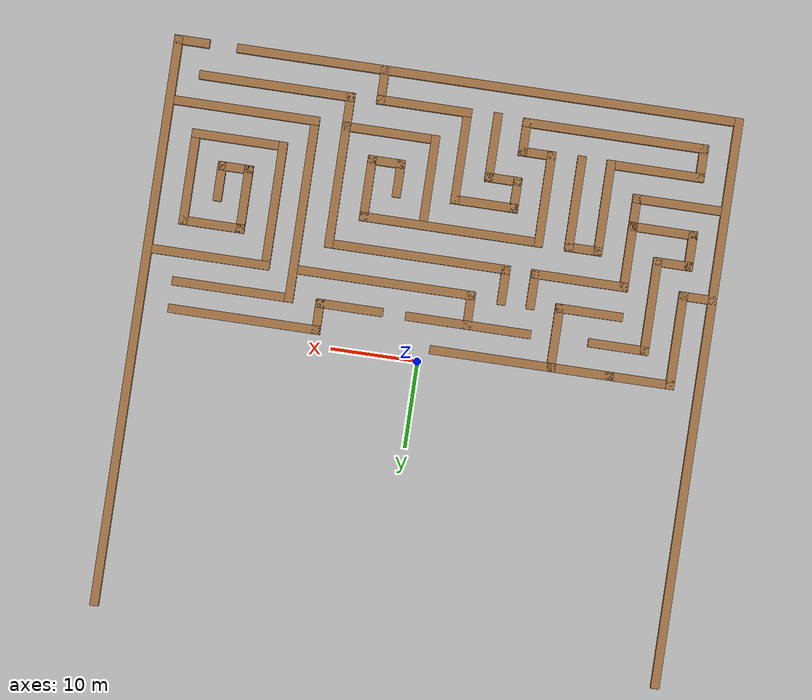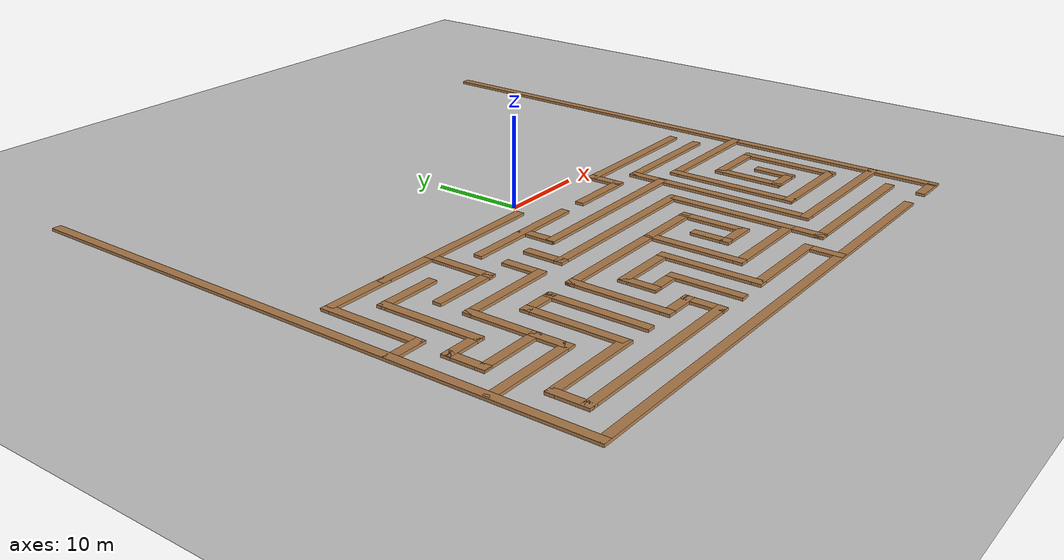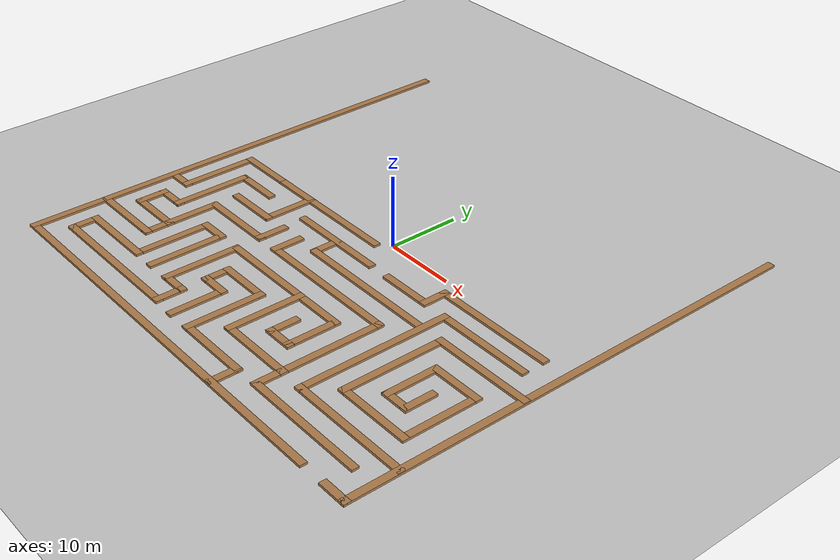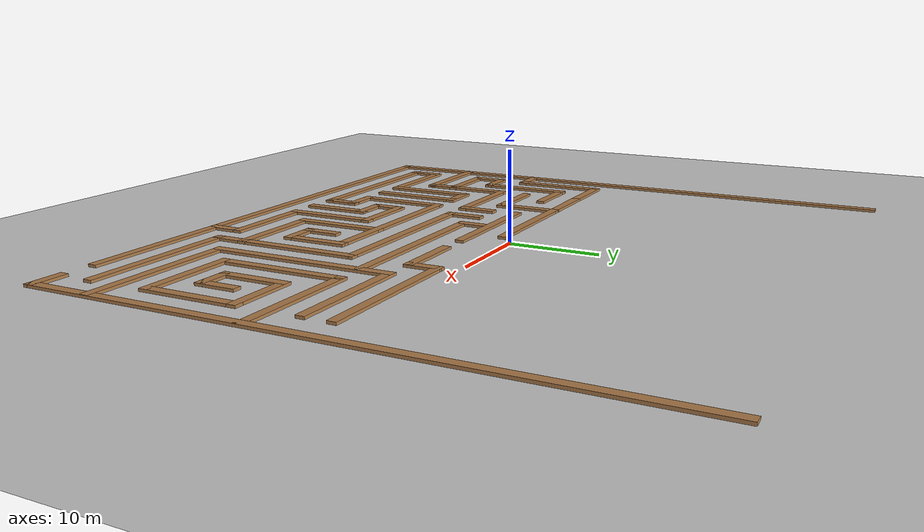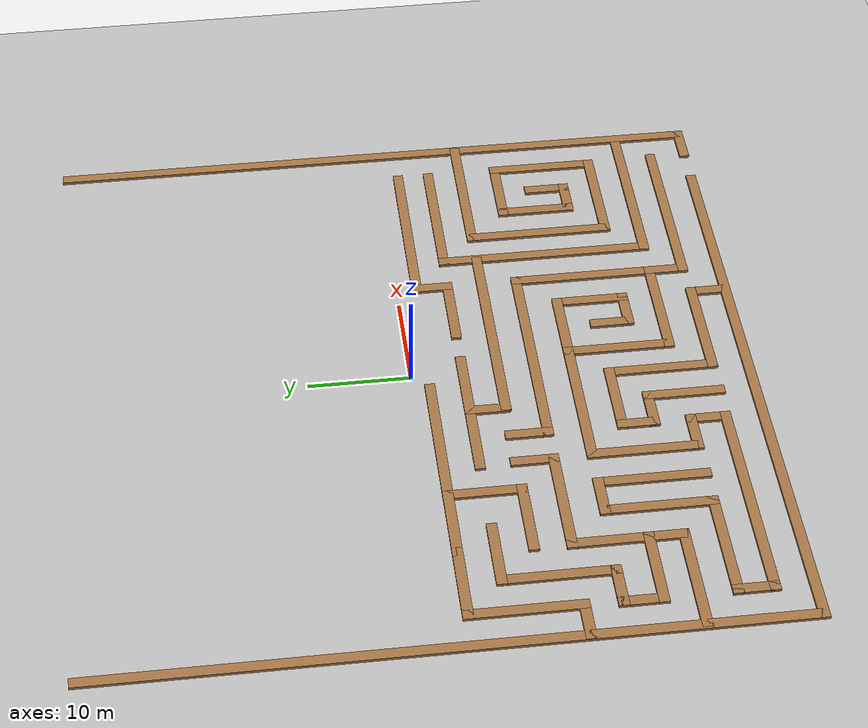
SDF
<sdf version="1.7">
 <world name="default">
  <model name="ground_plane">
   <static>1</static>
   <link name="link">
    <collision name="collision">
     <geometry><plane><normal>0 0 1</normal><size>100 100</size></plane></geometry>
     <surface><friction><ode><mu>100</mu><mu2>50</mu2></ode></friction></surface>
    </collision>
    <visual name="visual">
     <cast_shadows>0</cast_shadows>
     <geometry><plane><normal>0 0 1</normal><size>100 100</size></plane></geometry>
     <material>
      <script><uri>file://media/materials/scripts/gazebo.material</uri><name>Gazebo/Grey</name></script>
     </material>
    </visual>
   </link>
  </model>
  <model name="Maze_thick_walls">
   <pose>0.046124 0.012169 0 0 -0 0</pose>
   <link name="Wall_10">
    <collision name="Wall_10_Collision">
     <geometry><box><size>66.3629 1 0.3</size></box></geometry>
     <pose>0 0 0.15 0 -0 0</pose>
    </collision>
    <visual name="Wall_10_Visual">
     <pose>0 0 0.15 0 -0 0</pose>
     <geometry><box><size>66.3629 1 0.3</size></box></geometry>
     <material>
      <script><uri>file://media/materials/scripts/gazebo.material</uri><name>Gazebo/Wood</name></script>
      <ambient>1 1 1 1</ambient>
     </material>
     <meta><layer>0</layer></meta>
    </visual>
    <pose>32.5818 -0.012722 0 0 -0 1.56973</pose>
   </link>
   <link name="Wall_101">
    <collision name="Wall_101_Collision">
     <geometry><box><size>14.6 1 0.3</size></box></geometry>
     <pose>0 0 0.15 0 -0 0</pose>
    </collision>
    <visual name="Wall_101_Visual">
     <pose>0 0 0.15 0 -0 0</pose>
     <geometry><box><size>14.6 1 0.3</size></box></geometry>
     <material>
      <script><uri>file://media/materials/scripts/gazebo.material</uri><name>Gazebo/Wood</name></script>
      <ambient>1 1 1 1</ambient>
     </material>
     <meta><layer>0</layer></meta>
    </visual>
    <pose>12.0029 -18.8182 0 0 -0 1.5708</pose>
   </link>
   <link name="Wall_103">
    <collision name="Wall_103_Collision">
     <geometry><box><size>17.8495 1 0.3</size></box></geometry>
     <pose>0 0 0.15 0 -0 0</pose>
    </collision>
    <visual name="Wall_103_Visual">
     <pose>0 0 0.15 0 -0 0</pose>
     <geometry><box><size>17.8495 1 0.3</size></box></geometry>
     <material>
      <script><uri>file://media/materials/scripts/gazebo.material</uri><name>Gazebo/Wood</name></script>
      <ambient>1 1 1 1</ambient>
     </material>
     <meta><layer>0</layer></meta>
    </visual>
    <pose>24.0399 -25.7352 0 0 -0 3.14159</pose>
   </link>
   <link name="Wall_105">
    <collision name="Wall_105_Collision">
     <geometry><box><size>14.6003 1 0.3</size></box></geometry>
     <pose>0 0 0.15 0 -0 0</pose>
    </collision>
    <visual name="Wall_105_Visual">
     <pose>0 0 0.15 0 -0 0</pose>
     <geometry><box><size>14.6003 1 0.3</size></box></geometry>
     <material>
      <script><uri>file://media/materials/scripts/gazebo.material</uri><name>Gazebo/Wood</name></script>
      <ambient>1 1 1 1</ambient>
     </material>
     <meta><layer>0</layer></meta>
    </visual>
    <pose>25.6609 -8.44317 0 0 -0 3.14159</pose>
   </link>
   <link name="Wall_107">
    <collision name="Wall_107_Collision">
     <geometry><box><size>14.85 1 0.3</size></box></geometry>
     <pose>0 0 0.15 0 -0 0</pose>
    </collision>
    <visual name="Wall_107_Visual">
     <pose>0 0 0.15 0 -0 0</pose>
     <geometry><box><size>14.85 1 0.3</size></box></geometry>
     <material>
      <script><uri>file://media/materials/scripts/gazebo.material</uri><name>Gazebo/Wood</name></script>
      <ambient>1 1 1 1</ambient>
     </material>
     <meta><layer>0</layer></meta>
    </visual>
    <pose>18.8609 -15.3682 0 0 -0 -1.5708</pose>
   </link>
   <link name="Wall_109">
    <collision name="Wall_109_Collision">
     <geometry><box><size>11.1 1 0.3</size></box></geometry>
     <pose>0 0 0.15 0 -0 0</pose>
    </collision>
    <visual name="Wall_109_Visual">
     <pose>0 0 0.15 0 -0 0</pose>
     <geometry><box><size>11.1 1 0.3</size></box></geometry>
     <material>
      <script><uri>file://media/materials/scripts/gazebo.material</uri><name>Gazebo/Wood</name></script>
      <ambient>1 1 1 1</ambient>
     </material>
     <meta><layer>0</layer></meta>
    </visual>
    <pose>23.9109 -22.2932 0 0 -0 0</pose>
   </link>
   <link name="Wall_111">
    <collision name="Wall_111_Collision">
     <geometry><box><size>11.1 1 0.3</size></box></geometry>
     <pose>0 0 0.15 0 -0 0</pose>
    </collision>
    <visual name="Wall_111_Visual">
     <pose>0 0 0.15 0 -0 0</pose>
     <geometry><box><size>11.1 1 0.3</size></box></geometry>
     <material>
      <script><uri>file://media/materials/scripts/gazebo.material</uri><name>Gazebo/Wood</name></script>
      <ambient>1 1 1 1</ambient>
     </material>
     <meta><layer>0</layer></meta>
    </visual>
    <pose>28.9609 -17.2432 0 0 -0 1.5708</pose>
   </link>
   <link name="Wall_113">
    <collision name="Wall_113_Collision">
     <geometry><box><size>7.6 1 0.3</size></box></geometry>
     <pose>0 0 0.15 0 -0 0</pose>
    </collision>
    <visual name="Wall_113_Visual">
     <pose>0 0 0.15 0 -0 0</pose>
     <geometry><box><size>7.6 1 0.3</size></box></geometry>
     <material>
      <script><uri>file://media/materials/scripts/gazebo.material</uri><name>Gazebo/Wood</name></script>
      <ambient>1 1 1 1</ambient>
     </material>
     <meta><layer>0</layer></meta>
    </visual>
    <pose>25.6609 -12.1932 0 0 -0 3.14159</pose>
   </link>
   <link name="Wall_115">
    <collision name="Wall_115_Collision">
     <geometry><box><size>7.85 1 0.3</size></box></geometry>
     <pose>0 0 0.15 0 -0 0</pose>
    </collision>
    <visual name="Wall_115_Visual">
     <pose>0 0 0.15 0 -0 0</pose>
     <geometry><box><size>7.85 1 0.3</size></box></geometry>
     <material>
      <script><uri>file://media/materials/scripts/gazebo.material</uri><name>Gazebo/Wood</name></script>
      <ambient>1 1 1 1</ambient>
     </material>
     <meta><layer>0</layer></meta>
    </visual>
    <pose>22.3609 -15.6182 0 0 -0 -1.5708</pose>
   </link>
   <link name="Wall_117">
    <collision name="Wall_117_Collision">
     <geometry><box><size>4.1 1 0.3</size></box></geometry>
     <pose>0 0 0.15 0 -0 0</pose>
    </collision>
    <visual name="Wall_117_Visual">
     <pose>0 0 0.15 0 -0 0</pose>
     <geometry><box><size>4.1 1 0.3</size></box></geometry>
     <material>
      <script><uri>file://media/materials/scripts/gazebo.material</uri><name>Gazebo/Wood</name></script>
      <ambient>1 1 1 1</ambient>
     </material>
     <meta><layer>0</layer></meta>
    </visual>
    <pose>23.9109 -19.0432 0 0 -0 0</pose>
   </link>
   <link name="Wall_119">
    <collision name="Wall_119_Collision">
     <geometry><box><size>4.6 1 0.3</size></box></geometry>
     <pose>0 0 0.15 0 -0 0</pose>
    </collision>
    <visual name="Wall_119_Visual">
     <pose>0 0 0.15 0 -0 0</pose>
     <geometry><box><size>4.6 1 0.3</size></box></geometry>
     <material>
      <script><uri>file://media/materials/scripts/gazebo.material</uri><name>Gazebo/Wood</name></script>
      <ambient>1 1 1 1</ambient>
     </material>
     <meta><layer>0</layer></meta>
    </visual>
    <pose>25.4609 -17.2432 0 0 -0 1.5708</pose>
   </link>
   <link name="Wall_123">
    <collision name="Wall_123_Collision">
     <geometry><box><size>21.6 1 0.3</size></box></geometry>
     <pose>0 0 0.15 0 -0 0</pose>
    </collision>
    <visual name="Wall_123_Visual">
     <pose>0 0 0.15 0 -0 0</pose>
     <geometry><box><size>21.6 1 0.3</size></box></geometry>
     <material>
      <script><uri>file://media/materials/scripts/gazebo.material</uri><name>Gazebo/Wood</name></script>
      <ambient>1 1 1 1</ambient>
     </material>
     <meta><layer>0</layer></meta>
    </visual>
    <pose>15.6149 -15.4352 0 0 -0 1.5708</pose>
   </link>
   <link name="Wall_125">
    <collision name="Wall_125_Collision">
     <geometry><box><size>14.1 1 0.3</size></box></geometry>
     <pose>0 0 0.15 0 -0 0</pose>
    </collision>
    <visual name="Wall_125_Visual">
     <pose>0 0 0.15 0 -0 0</pose>
     <geometry><box><size>14.1 1 0.3</size></box></geometry>
     <material>
      <script><uri>file://media/materials/scripts/gazebo.material</uri><name>Gazebo/Wood</name></script>
      <ambient>1 1 1 1</ambient>
     </material>
     <meta><layer>0</layer></meta>
    </visual>
    <pose>22.1649 -5.13517 0 0 -0 0</pose>
   </link>
   <link name="Wall_127">
    <collision name="Wall_127_Collision">
     <geometry><box><size>21.3502 1 0.3</size></box></geometry>
     <pose>0 0 0.15 0 -0 0</pose>
    </collision>
    <visual name="Wall_127_Visual">
     <pose>0 0 0.15 0 -0 0</pose>
     <geometry><box><size>21.3502 1 0.3</size></box></geometry>
     <material>
      <script><uri>file://media/materials/scripts/gazebo.material</uri><name>Gazebo/Wood</name></script>
      <ambient>1 1 1 1</ambient>
     </material>
     <meta><layer>0</layer></meta>
    </visual>
    <pose>5.22088 -8.50017 0 0 -0 3.14159</pose>
   </link>
   <link name="Wall_129">
    <collision name="Wall_129_Collision">
     <geometry><box><size>21.6 1 0.3</size></box></geometry>
     <pose>0 0 0.15 0 -0 0</pose>
    </collision>
    <visual name="Wall_129_Visual">
     <pose>0 0 0.15 0 -0 0</pose>
     <geometry><box><size>21.6 1 0.3</size></box></geometry>
     <material>
      <script><uri>file://media/materials/scripts/gazebo.material</uri><name>Gazebo/Wood</name></script>
      <ambient>1 1 1 1</ambient>
     </material>
     <meta><layer>0</layer></meta>
    </visual>
    <pose>1.70288 -12.0182 0 0 -0 3.14159</pose>
   </link>
   <link name="Wall_131">
    <collision name="Wall_131_Collision">
     <geometry><box><size>4.6 1 0.3</size></box></geometry>
     <pose>0 0 0.15 0 -0 0</pose>
    </collision>
    <visual name="Wall_131_Visual">
     <pose>0 0 0.15 0 -0 0</pose>
     <geometry><box><size>4.6 1 0.3</size></box></geometry>
     <material>
      <script><uri>file://media/materials/scripts/gazebo.material</uri><name>Gazebo/Wood</name></script>
      <ambient>1 1 1 1</ambient>
     </material>
     <meta><layer>0</layer></meta>
    </visual>
    <pose>-8.59712 -10.2182 0 0 -0 1.5708</pose>
   </link>
   <link name="Wall_133">
    <collision name="Wall_133_Collision">
     <geometry><box><size>4.6 1 0.3</size></box></geometry>
     <pose>0 0 0.15 0 -0 0</pose>
    </collision>
    <visual name="Wall_133_Visual">
     <pose>0 0 0.15 0 -0 0</pose>
     <geometry><box><size>4.6 1 0.3</size></box></geometry>
     <material>
      <script><uri>file://media/materials/scripts/gazebo.material</uri><name>Gazebo/Wood</name></script>
      <ambient>1 1 1 1</ambient>
     </material>
     <meta><layer>0</layer></meta>
    </visual>
    <pose>-11.9741 -10.2182 0 0 -0 -1.5708</pose>
   </link>
   <link name="Wall_135">
    <collision name="Wall_135_Collision">
     <geometry><box><size>11.321 1 0.3</size></box></geometry>
     <pose>0 0 0.15 0 -0 0</pose>
    </collision>
    <visual name="Wall_135_Visual">
     <pose>0 0 0.15 0 -0 0</pose>
     <geometry><box><size>11.321 1 0.3</size></box></geometry>
     <material>
      <script><uri>file://media/materials/scripts/gazebo.material</uri><name>Gazebo/Wood</name></script>
      <ambient>1 1 1 1</ambient>
     </material>
     <meta><layer>0</layer></meta>
    </visual>
    <pose>-17.1346 -12.0182 0 0 -0 3.14159</pose>
   </link>
   <link name="Wall_137">
    <collision name="Wall_137_Collision">
     <geometry><box><size>8.05106 1 0.3</size></box></geometry>
     <pose>0 0 0.15 0 -0 0</pose>
    </collision>
    <visual name="Wall_137_Visual">
     <pose>0 0 0.15 0 -0 0</pose>
     <geometry><box><size>8.05106 1 0.3</size></box></geometry>
     <material>
      <script><uri>file://media/materials/scripts/gazebo.material</uri><name>Gazebo/Wood</name></script>
      <ambient>1 1 1 1</ambient>
     </material>
     <meta><layer>0</layer></meta>
    </visual>
    <pose>-22.2951 -15.5437 0 0 -0 -1.5708</pose>
   </link>
   <link name="Wall_139">
    <collision name="Wall_139_Collision">
     <geometry><box><size>7.84983 1 0.3</size></box></geometry>
     <pose>0 0 0.15 0 -0 0</pose>
    </collision>
    <visual name="Wall_139_Visual">
     <pose>0 0 0.15 0 -0 0</pose>
     <geometry><box><size>7.84983 1 0.3</size></box></geometry>
     <material>
      <script><uri>file://media/materials/scripts/gazebo.material</uri><name>Gazebo/Wood</name></script>
      <ambient>1 1 1 1</ambient>
     </material>
     <meta><layer>0</layer></meta>
    </visual>
    <pose>-18.7611 -8.54617 0 0 -0 0</pose>
   </link>
   <link name="Wall_141">
    <collision name="Wall_141_Collision">
     <geometry><box><size>7.898 1 0.3</size></box></geometry>
     <pose>0 0 0.15 0 -0 0</pose>
    </collision>
    <visual name="Wall_141_Visual">
     <pose>0 0 0.15 0 -0 0</pose>
     <geometry><box><size>7.898 1 0.3</size></box></geometry>
     <material>
      <script><uri>file://media/materials/scripts/gazebo.material</uri><name>Gazebo/Wood</name></script>
      <ambient>1 1 1 1</ambient>
     </material>
     <meta><layer>0</layer></meta>
    </visual>
    <pose>-15.3361 -5.09717 0 0 -0 1.5708</pose>
   </link>
   <link name="Wall_143">
    <collision name="Wall_143_Collision">
     <geometry><box><size>14.5998 1 0.3</size></box></geometry>
     <pose>0 0 0.15 0 -0 0</pose>
    </collision>
    <visual name="Wall_143_Visual">
     <pose>0 0 0.15 0 -0 0</pose>
     <geometry><box><size>14.5998 1 0.3</size></box></geometry>
     <material>
      <script><uri>file://media/materials/scripts/gazebo.material</uri><name>Gazebo/Wood</name></script>
      <ambient>1 1 1 1</ambient>
     </material>
     <meta><layer>0</layer></meta>
    </visual>
    <pose>-5.22012 -5.05017 0 0 -0 0</pose>
   </link>
   <link name="Wall_145">
    <collision name="Wall_145_Collision">
     <geometry><box><size>4.278 1 0.3</size></box></geometry>
     <pose>0 0 0.15 0 -0 0</pose>
    </collision>
    <visual name="Wall_145_Visual">
     <pose>0 0 0.15 0 -0 0</pose>
     <geometry><box><size>4.278 1 0.3</size></box></geometry>
     <material>
      <script><uri>file://media/materials/scripts/gazebo.material</uri><name>Gazebo/Wood</name></script>
      <ambient>1 1 1 1</ambient>
     </material>
     <meta><layer>0</layer></meta>
    </visual>
    <pose>-5.07412 -6.71517 0 0 -0 -1.5708</pose>
   </link>
   <link name="Wall_147">
    <collision name="Wall_147_Collision">
     <geometry><box><size>7.75817 1 0.3</size></box></geometry>
     <pose>0 0 0.15 0 -0 0</pose>
    </collision>
    <visual name="Wall_147_Visual">
     <pose>0 0 0.15 0 -0 0</pose>
     <geometry><box><size>7.75817 1 0.3</size></box></geometry>
     <material>
      <script><uri>file://media/materials/scripts/gazebo.material</uri><name>Gazebo/Wood</name></script>
      <ambient>1 1 1 1</ambient>
     </material>
     <meta><layer>0</layer></meta>
    </visual>
    <pose>-18.7151 -1.64817 0 0 -0 3.14159</pose>
   </link>
   <link name="Wall_149">
    <collision name="Wall_149_Collision">
     <geometry><box><size>14.6 1 0.3</size></box></geometry>
     <pose>0 0 0.15 0 -0 0</pose>
    </collision>
    <visual name="Wall_149_Visual">
     <pose>0 0 0.15 0 -0 0</pose>
     <geometry><box><size>14.6 1 0.3</size></box></geometry>
     <material>
      <script><uri>file://media/materials/scripts/gazebo.material</uri><name>Gazebo/Wood</name></script>
      <ambient>1 1 1 1</ambient>
     </material>
     <meta><layer>0</layer></meta>
    </visual>
    <pose>-8.53612 -1.64817 0 0 -0 0</pose>
   </link>
   <link name="Wall_153">
    <collision name="Wall_153_Collision">
     <geometry><box><size>7.84995 1 0.3</size></box></geometry>
     <pose>0 0 0.15 0 -0 0</pose>
    </collision>
    <visual name="Wall_153_Visual">
     <pose>0 0 0.15 0 -0 0</pose>
     <geometry><box><size>7.84995 1 0.3</size></box></geometry>
     <material>
      <script><uri>file://media/materials/scripts/gazebo.material</uri><name>Gazebo/Wood</name></script>
      <ambient>1 1 1 1</ambient>
     </material>
     <meta><layer>0</layer></meta>
    </visual>
    <pose>8.59088 -5.05017 0 0 -0 0</pose>
   </link>
   <link name="Wall_155">
    <collision name="Wall_155_Collision">
     <geometry><box><size>4.1 1 0.3</size></box></geometry>
     <pose>0 0 0.15 0 -0 0</pose>
    </collision>
    <visual name="Wall_155_Visual">
     <pose>0 0 0.15 0 -0 0</pose>
     <geometry><box><size>4.1 1 0.3</size></box></geometry>
     <material>
      <script><uri>file://media/materials/scripts/gazebo.material</uri><name>Gazebo/Wood</name></script>
      <ambient>1 1 1 1</ambient>
     </material>
     <meta><layer>0</layer></meta>
    </visual>
    <pose>12.0159 -3.50017 0 0 -0 1.5708</pose>
   </link>
   <link name="Wall_157">
    <collision name="Wall_157_Collision">
     <geometry><box><size>17.699 1 0.3</size></box></geometry>
     <pose>0 0 0.15 0 -0 0</pose>
    </collision>
    <visual name="Wall_157_Visual">
     <pose>0 0 0.15 0 -0 0</pose>
     <geometry><box><size>17.699 1 0.3</size></box></geometry>
     <material>
      <script><uri>file://media/materials/scripts/gazebo.material</uri><name>Gazebo/Wood</name></script>
      <ambient>1 1 1 1</ambient>
     </material>
     <meta><layer>0</layer></meta>
    </visual>
    <pose>20.3654 -1.95017 0 0 -0 0</pose>
   </link>
   <link name="Wall_2">
    <collision name="Wall_2_Collision">
     <geometry><box><size>66.35 1 0.3</size></box></geometry>
     <pose>0 0 0.15 0 -0 0</pose>
    </collision>
    <visual name="Wall_2_Visual">
     <pose>0 0 0.15 0 -0 0</pose>
     <geometry><box><size>66.35 1 0.3</size></box></geometry>
     <material>
      <script><uri>file://media/materials/scripts/gazebo.material</uri><name>Gazebo/Wood</name></script>
      <ambient>1 1 1 1</ambient>
     </material>
     <meta><layer>0</layer></meta>
    </visual>
    <pose>-32.5891 -0.019169 0 0 -0 -1.5708</pose>
   </link>
   <link name="Wall_29">
    <collision name="Wall_29_Collision">
     <geometry><box><size>8.1 1 0.3</size></box></geometry>
     <pose>0 0 0.15 0 -0 0</pose>
    </collision>
    <visual name="Wall_29_Visual">
     <pose>0 0 0.15 0 -0 0</pose>
     <geometry><box><size>8.1 1 0.3</size></box></geometry>
     <material>
      <script><uri>file://media/materials/scripts/gazebo.material</uri><name>Gazebo/Wood</name></script>
      <ambient>1 1 1 1</ambient>
     </material>
     <meta><layer>0</layer></meta>
    </visual>
    <pose>-25.6441 -1.64817 0 0 -0 3.14159</pose>
   </link>
   <link name="Wall_31">
    <collision name="Wall_31_Collision">
     <geometry><box><size>11.35 1 0.3</size></box></geometry>
     <pose>0 0 0.15 0 -0 0</pose>
    </collision>
    <visual name="Wall_31_Visual">
     <pose>0 0 0.15 0 -0 0</pose>
     <geometry><box><size>11.35 1 0.3</size></box></geometry>
     <material>
      <script><uri>file://media/materials/scripts/gazebo.material</uri><name>Gazebo/Wood</name></script>
      <ambient>1 1 1 1</ambient>
     </material>
     <meta><layer>0</layer></meta>
    </visual>
    <pose>-29.1941 -6.82317 0 0 -0 -1.5708</pose>
   </link>
   <link name="Wall_33">
    <collision name="Wall_33_Collision">
     <geometry><box><size>4.35 1 0.3</size></box></geometry>
     <pose>0 0 0.15 0 -0 0</pose>
    </collision>
    <visual name="Wall_33_Visual">
     <pose>0 0 0.15 0 -0 0</pose>
     <geometry><box><size>4.35 1 0.3</size></box></geometry>
     <material>
      <script><uri>file://media/materials/scripts/gazebo.material</uri><name>Gazebo/Wood</name></script>
      <ambient>1 1 1 1</ambient>
     </material>
     <meta><layer>0</layer></meta>
    </visual>
    <pose>-30.8691 -11.9982 0 0 -0 3.14159</pose>
   </link>
   <link name="Wall_35">
    <collision name="Wall_35_Collision">
     <geometry><box><size>7.045 1 0.3</size></box></geometry>
     <pose>0 0 0.15 0 -0 0</pose>
    </collision>
    <visual name="Wall_35_Visual">
     <pose>0 0 0.15 0 -0 0</pose>
     <geometry><box><size>7.045 1 0.3</size></box></geometry>
     <material>
      <script><uri>file://media/materials/scripts/gazebo.material</uri><name>Gazebo/Wood</name></script>
      <ambient>1 1 1 1</ambient>
     </material>
     <meta><layer>0</layer></meta>
    </visual>
    <pose>-22.6866 -5.11917 0 0 -0 3.14159</pose>
   </link>
   <link name="Wall_37">
    <collision name="Wall_37_Collision">
     <geometry><box><size>11.3504 1 0.3</size></box></geometry>
     <pose>0 0 0.15 0 -0 0</pose>
    </collision>
    <visual name="Wall_37_Visual">
     <pose>0 0 0.15 0 -0 0</pose>
     <geometry><box><size>11.3504 1 0.3</size></box></geometry>
     <material>
      <script><uri>file://media/materials/scripts/gazebo.material</uri><name>Gazebo/Wood</name></script>
      <ambient>1 1 1 1</ambient>
     </material>
     <meta><layer>0</layer></meta>
    </visual>
    <pose>-25.7041 -10.2942 0 0 -0 -1.56983</pose>
   </link>
   <link name="Wall_4">
    <collision name="Wall_4_Collision">
     <geometry><box><size>58.85 1 0.3</size></box></geometry>
     <pose>0 0 0.15 0 -0 0</pose>
    </collision>
    <visual name="Wall_4_Visual">
     <pose>0 0 0.15 0 -0 0</pose>
     <geometry><box><size>58.85 1 0.3</size></box></geometry>
     <material>
      <script><uri>file://media/materials/scripts/gazebo.material</uri><name>Gazebo/Wood</name></script>
      <ambient>1 1 1 1</ambient>
     </material>
     <meta><layer>0</layer></meta>
    </visual>
    <pose>-3.66412 -32.6942 0 0 -0 0</pose>
   </link>
   <link name="Wall_40">
    <collision name="Wall_40_Collision">
     <geometry><box><size>4.6 1 0.3</size></box></geometry>
     <pose>0 0 0.15 0 -0 0</pose>
    </collision>
    <visual name="Wall_40_Visual">
     <pose>0 0 0.15 0 -0 0</pose>
     <geometry><box><size>4.6 1 0.3</size></box></geometry>
     <material>
      <script><uri>file://media/materials/scripts/gazebo.material</uri><name>Gazebo/Wood</name></script>
      <ambient>1 1 1 1</ambient>
     </material>
     <meta><layer>0</layer></meta>
    </visual>
    <pose>-27.4991 -15.4692 0 0 -0 3.14159</pose>
   </link>
   <link name="Wall_42">
    <collision name="Wall_42_Collision">
     <geometry><box><size>4.6 1 0.3</size></box></geometry>
     <pose>0 0 0.15 0 -0 0</pose>
    </collision>
    <visual name="Wall_42_Visual">
     <pose>0 0 0.15 0 -0 0</pose>
     <geometry><box><size>4.6 1 0.3</size></box></geometry>
     <material>
      <script><uri>file://media/materials/scripts/gazebo.material</uri><name>Gazebo/Wood</name></script>
      <ambient>1 1 1 1</ambient>
     </material>
     <meta><layer>0</layer></meta>
    </visual>
    <pose>-29.2991 -17.2692 0 0 -0 -1.5708</pose>
   </link>
   <link name="Wall_44">
    <collision name="Wall_44_Collision">
     <geometry><box><size>8.00415 1 0.3</size></box></geometry>
     <pose>0 0 0.15 0 -0 0</pose>
    </collision>
    <visual name="Wall_44_Visual">
     <pose>0 0 0.15 0 -0 0</pose>
     <geometry><box><size>8.00415 1 0.3</size></box></geometry>
     <material>
      <script><uri>file://media/materials/scripts/gazebo.material</uri><name>Gazebo/Wood</name></script>
      <ambient>1 1 1 1</ambient>
     </material>
     <meta><layer>0</layer></meta>
    </visual>
    <pose>-25.7971 -19.0692 0 0 -0 0</pose>
   </link>
   <link name="Wall_46">
    <collision name="Wall_46_Collision">
     <geometry><box><size>4.23515 1 0.3</size></box></geometry>
     <pose>0 0 0.15 0 -0 0</pose>
    </collision>
    <visual name="Wall_46_Visual">
     <pose>0 0 0.15 0 -0 0</pose>
     <geometry><box><size>4.23515 1 0.3</size></box></geometry>
     <material>
      <script><uri>file://media/materials/scripts/gazebo.material</uri><name>Gazebo/Wood</name></script>
      <ambient>1 1 1 1</ambient>
     </material>
     <meta><layer>0</layer></meta>
    </visual>
    <pose>-22.2951 -20.6867 0 0 -0 -1.5708</pose>
   </link>
   <link name="Wall_49">
    <collision name="Wall_49_Collision">
     <geometry><box><size>11.1 1 0.3</size></box></geometry>
     <pose>0 0 0.15 0 -0 0</pose>
    </collision>
    <visual name="Wall_49_Visual">
     <pose>0 0 0.15 0 -0 0</pose>
     <geometry><box><size>11.1 1 0.3</size></box></geometry>
     <material>
      <script><uri>file://media/materials/scripts/gazebo.material</uri><name>Gazebo/Wood</name></script>
      <ambient>1 1 1 1</ambient>
     </material>
     <meta><layer>0</layer></meta>
    </visual>
    <pose>-27.3451 -22.3042 0 0 -0 3.14159</pose>
   </link>
   <link name="Wall_51">
    <collision name="Wall_51_Collision">
     <geometry><box><size>11.0997 1 0.3</size></box></geometry>
     <pose>0 0 0.15 0 -0 0</pose>
    </collision>
    <visual name="Wall_51_Visual">
     <pose>0 0 0.15 0 -0 0</pose>
     <geometry><box><size>11.0997 1 0.3</size></box></geometry>
     <material>
      <script><uri>file://media/materials/scripts/gazebo.material</uri><name>Gazebo/Wood</name></script>
      <ambient>1 1 1 1</ambient>
     </material>
     <meta><layer>0</layer></meta>
    </visual>
    <pose>-15.3611 -20.7012 0 0 -0 1.5708</pose>
   </link>
   <link name="Wall_54">
    <collision name="Wall_54_Collision">
     <geometry><box><size>4.386 1 0.3</size></box></geometry>
     <pose>0 0 0.15 0 -0 0</pose>
    </collision>
    <visual name="Wall_54_Visual">
     <pose>0 0 0.15 0 -0 0</pose>
     <geometry><box><size>4.386 1 0.3</size></box></geometry>
     <material>
      <script><uri>file://media/materials/scripts/gazebo.material</uri><name>Gazebo/Wood</name></script>
      <ambient>1 1 1 1</ambient>
     </material>
     <meta><layer>0</layer></meta>
    </visual>
    <pose>-17.0541 -15.6512 0 0 -0 3.14159</pose>
   </link>
   <link name="Wall_56">
    <collision name="Wall_56_Collision">
     <geometry><box><size>11.1 1 0.3</size></box></geometry>
     <pose>0 0 0.15 0 -0 0</pose>
    </collision>
    <visual name="Wall_56_Visual">
     <pose>0 0 0.15 0 -0 0</pose>
     <geometry><box><size>11.1 1 0.3</size></box></geometry>
     <material>
      <script><uri>file://media/materials/scripts/gazebo.material</uri><name>Gazebo/Wood</name></script>
      <ambient>1 1 1 1</ambient>
     </material>
     <meta><layer>0</layer></meta>
    </visual>
    <pose>-18.7471 -20.7012 0 0 -0 -1.5708</pose>
   </link>
   <link name="Wall_58">
    <collision name="Wall_58_Collision">
     <geometry><box><size>11.35 1 0.3</size></box></geometry>
     <pose>0 0 0.15 0 -0 0</pose>
    </collision>
    <visual name="Wall_58_Visual">
     <pose>0 0 0.15 0 -0 0</pose>
     <geometry><box><size>11.35 1 0.3</size></box></geometry>
     <material>
      <script><uri>file://media/materials/scripts/gazebo.material</uri><name>Gazebo/Wood</name></script>
      <ambient>1 1 1 1</ambient>
     </material>
     <meta><layer>0</layer></meta>
    </visual>
    <pose>-23.9221 -25.7512 0 0 -0 3.14159</pose>
   </link>
   <link name="Wall_60">
    <collision name="Wall_60_Collision">
     <geometry><box><size>4.35 1 0.3</size></box></geometry>
     <pose>0 0 0.15 0 -0 0</pose>
    </collision>
    <visual name="Wall_60_Visual">
     <pose>0 0 0.15 0 -0 0</pose>
     <geometry><box><size>4.35 1 0.3</size></box></geometry>
     <material>
      <script><uri>file://media/materials/scripts/gazebo.material</uri><name>Gazebo/Wood</name></script>
      <ambient>1 1 1 1</ambient>
     </material>
     <meta><layer>0</layer></meta>
    </visual>
    <pose>-29.0971 -27.4262 0 0 -0 -1.5708</pose>
   </link>
   <link name="Wall_62">
    <collision name="Wall_62_Collision">
     <geometry><box><size>21.6 1 0.3</size></box></geometry>
     <pose>0 0 0.15 0 -0 0</pose>
    </collision>
    <visual name="Wall_62_Visual">
     <pose>0 0 0.15 0 -0 0</pose>
     <geometry><box><size>21.6 1 0.3</size></box></geometry>
     <material>
      <script><uri>file://media/materials/scripts/gazebo.material</uri><name>Gazebo/Wood</name></script>
      <ambient>1 1 1 1</ambient>
     </material>
     <meta><layer>0</layer></meta>
    </visual>
    <pose>-18.7971 -29.1012 0 0 -0 0</pose>
   </link>
   <link name="Wall_64">
    <collision name="Wall_64_Collision">
     <geometry><box><size>4.35 1 0.3</size></box></geometry>
     <pose>0 0 0.15 0 -0 0</pose>
    </collision>
    <visual name="Wall_64_Visual">
     <pose>0 0 0.15 0 -0 0</pose>
     <geometry><box><size>4.35 1 0.3</size></box></geometry>
     <material>
      <script><uri>file://media/materials/scripts/gazebo.material</uri><name>Gazebo/Wood</name></script>
      <ambient>1 1 1 1</ambient>
     </material>
     <meta><layer>0</layer></meta>
    </visual>
    <pose>-8.49712 -27.4262 0 0 -0 1.5708</pose>
   </link>
   <link name="Wall_66">
    <collision name="Wall_66_Collision">
     <geometry><box><size>4.35 1 0.3</size></box></geometry>
     <pose>0 0 0.15 0 -0 0</pose>
    </collision>
    <visual name="Wall_66_Visual">
     <pose>0 0 0.15 0 -0 0</pose>
     <geometry><box><size>4.35 1 0.3</size></box></geometry>
     <material>
      <script><uri>file://media/materials/scripts/gazebo.material</uri><name>Gazebo/Wood</name></script>
      <ambient>1 1 1 1</ambient>
     </material>
     <meta><layer>0</layer></meta>
    </visual>
    <pose>-10.1721 -25.7512 0 0 -0 3.14159</pose>
   </link>
   <link name="Wall_68">
    <collision name="Wall_68_Collision">
     <geometry><box><size>11.1 1 0.3</size></box></geometry>
     <pose>0 0 0.15 0 -0 0</pose>
    </collision>
    <visual name="Wall_68_Visual">
     <pose>0 0 0.15 0 -0 0</pose>
     <geometry><box><size>11.1 1 0.3</size></box></geometry>
     <material>
      <script><uri>file://media/materials/scripts/gazebo.material</uri><name>Gazebo/Wood</name></script>
      <ambient>1 1 1 1</ambient>
     </material>
     <meta><layer>0</layer></meta>
    </visual>
    <pose>-11.8471 -20.7012 0 0 -0 1.5708</pose>
   </link>
   <link name="Wall_70">
    <collision name="Wall_70_Collision">
     <geometry><box><size>21.35 1 0.3</size></box></geometry>
     <pose>0 0 0.15 0 -0 0</pose>
    </collision>
    <visual name="Wall_70_Visual">
     <pose>0 0 0.15 0 -0 0</pose>
     <geometry><box><size>21.35 1 0.3</size></box></geometry>
     <material>
      <script><uri>file://media/materials/scripts/gazebo.material</uri><name>Gazebo/Wood</name></script>
      <ambient>1 1 1 1</ambient>
     </material>
     <meta><layer>0</layer></meta>
    </visual>
    <pose>-1.67212 -15.6512 0 0 -0 0</pose>
   </link>
   <link name="Wall_72">
    <collision name="Wall_72_Collision">
     <geometry><box><size>7.6 1 0.3</size></box></geometry>
     <pose>0 0 0.15 0 -0 0</pose>
    </collision>
    <visual name="Wall_72_Visual">
     <pose>0 0 0.15 0 -0 0</pose>
     <geometry><box><size>7.6 1 0.3</size></box></geometry>
     <material>
      <script><uri>file://media/materials/scripts/gazebo.material</uri><name>Gazebo/Wood</name></script>
      <ambient>1 1 1 1</ambient>
     </material>
     <meta><layer>0</layer></meta>
    </visual>
    <pose>8.50288 -18.9512 0 0 -0 -1.5708</pose>
   </link>
   <link name="Wall_74">
    <collision name="Wall_74_Collision">
     <geometry><box><size>4.35 1 0.3</size></box></geometry>
     <pose>0 0 0.15 0 -0 0</pose>
    </collision>
    <visual name="Wall_74_Visual">
     <pose>0 0 0.15 0 -0 0</pose>
     <geometry><box><size>4.35 1 0.3</size></box></geometry>
     <material>
      <script><uri>file://media/materials/scripts/gazebo.material</uri><name>Gazebo/Wood</name></script>
      <ambient>1 1 1 1</ambient>
     </material>
     <meta><layer>0</layer></meta>
    </visual>
    <pose>6.82788 -22.2512 0 0 -0 3.14159</pose>
   </link>
   <link name="Wall_76">
    <collision name="Wall_76_Collision">
     <geometry><box><size>4.35 1 0.3</size></box></geometry>
     <pose>0 0 0.15 0 -0 0</pose>
    </collision>
    <visual name="Wall_76_Visual">
     <pose>0 0 0.15 0 -0 0</pose>
     <geometry><box><size>4.35 1 0.3</size></box></geometry>
     <material>
      <script><uri>file://media/materials/scripts/gazebo.material</uri><name>Gazebo/Wood</name></script>
      <ambient>1 1 1 1</ambient>
     </material>
     <meta><layer>0</layer></meta>
    </visual>
    <pose>5.15288 -20.5762 0 0 -0 1.5708</pose>
   </link>
   <link name="Wall_78">
    <collision name="Wall_78_Collision">
     <geometry><box><size>10.972 1 0.3</size></box></geometry>
     <pose>0 0 0.15 0 -0 0</pose>
    </collision>
    <visual name="Wall_78_Visual">
     <pose>0 0 0.15 0 -0 0</pose>
     <geometry><box><size>10.972 1 0.3</size></box></geometry>
     <material>
      <script><uri>file://media/materials/scripts/gazebo.material</uri><name>Gazebo/Wood</name></script>
      <ambient>1 1 1 1</ambient>
     </material>
     <meta><layer>0</layer></meta>
    </visual>
    <pose>1.63488 -20.6322 0 0 -0 -1.5708</pose>
   </link>
   <link name="Wall_8">
    <collision name="Wall_8_Collision">
     <geometry><box><size>4.124 1 0.3</size></box></geometry>
     <pose>0 0 0.15 0 -0 0</pose>
    </collision>
    <visual name="Wall_8_Visual">
     <pose>0 0 0.15 0 -0 0</pose>
     <geometry><box><size>4.124 1 0.3</size></box></geometry>
     <material>
      <script><uri>file://media/materials/scripts/gazebo.material</uri><name>Gazebo/Wood</name></script>
      <ambient>1 1 1 1</ambient>
     </material>
     <meta><layer>0</layer></meta>
    </visual>
    <pose>30.9849 -32.6942 0 0 -0 0</pose>
   </link>
   <link name="Wall_80">
    <collision name="Wall_80_Collision">
     <geometry><box><size>11.3685 1 0.3</size></box></geometry>
     <pose>0 0 0.15 0 -0 0</pose>
    </collision>
    <visual name="Wall_80_Visual">
     <pose>0 0 0.15 0 -0 0</pose>
     <geometry><box><size>11.3685 1 0.3</size></box></geometry>
     <material>
      <script><uri>file://media/materials/scripts/gazebo.material</uri><name>Gazebo/Wood</name></script>
      <ambient>1 1 1 1</ambient>
     </material>
     <meta><layer>0</layer></meta>
    </visual>
    <pose>6.81888 -25.6182 0 0 -0 0</pose>
   </link>
   <link name="Wall_82">
    <collision name="Wall_82_Collision">
     <geometry><box><size>4.421 1 0.3</size></box></geometry>
     <pose>0 0 0.15 0 -0 0</pose>
    </collision>
    <visual name="Wall_82_Visual">
     <pose>0 0 0.15 0 -0 0</pose>
     <geometry><box><size>4.421 1 0.3</size></box></geometry>
     <material>
      <script><uri>file://media/materials/scripts/gazebo.material</uri><name>Gazebo/Wood</name></script>
      <ambient>1 1 1 1</ambient>
     </material>
     <meta><layer>0</layer></meta>
    </visual>
    <pose>12.0029 -27.3287 0 0 -0 -1.5708</pose>
   </link>
   <link name="Wall_84">
    <collision name="Wall_84_Collision">
     <geometry><box><size>18.1 1 0.3</size></box></geometry>
     <pose>0 0 0.15 0 -0 0</pose>
    </collision>
    <visual name="Wall_84_Visual">
     <pose>0 0 0.15 0 -0 0</pose>
     <geometry><box><size>18.1 1 0.3</size></box></geometry>
     <material>
      <script><uri>file://media/materials/scripts/gazebo.material</uri><name>Gazebo/Wood</name></script>
      <ambient>1 1 1 1</ambient>
     </material>
     <meta><layer>0</layer></meta>
    </visual>
    <pose>20.5529 -29.0392 0 0 -0 0</pose>
   </link>
   <link name="Wall_86">
    <collision name="Wall_86_Collision">
     <geometry><box><size>4.34985 1 0.3</size></box></geometry>
     <pose>0 0 0.15 0 -0 0</pose>
    </collision>
    <visual name="Wall_86_Visual">
     <pose>0 0 0.15 0 -0 0</pose>
     <geometry><box><size>4.34985 1 0.3</size></box></geometry>
     <material>
      <script><uri>file://media/materials/scripts/gazebo.material</uri><name>Gazebo/Wood</name></script>
      <ambient>1 1 1 1</ambient>
     </material>
     <meta><layer>0</layer></meta>
    </visual>
    <pose>8.51888 -30.9122 0 0 -0 1.5708</pose>
   </link>
   <link name="Wall_88">
    <collision name="Wall_88_Collision">
     <geometry><box><size>11.1 1 0.3</size></box></geometry>
     <pose>0 0 0.15 0 -0 0</pose>
    </collision>
    <visual name="Wall_88_Visual">
     <pose>0 0 0.15 0 -0 0</pose>
     <geometry><box><size>11.1 1 0.3</size></box></geometry>
     <material>
      <script><uri>file://media/materials/scripts/gazebo.material</uri><name>Gazebo/Wood</name></script>
      <ambient>1 1 1 1</ambient>
     </material>
     <meta><layer>0</layer></meta>
    </visual>
    <pose>3.46888 -29.2372 0 0 -0 3.14159</pose>
   </link>
   <link name="Wall_90">
    <collision name="Wall_90_Collision">
     <geometry><box><size>11.1 1 0.3</size></box></geometry>
     <pose>0 0 0.15 0 -0 0</pose>
    </collision>
    <visual name="Wall_90_Visual">
     <pose>0 0 0.15 0 -0 0</pose>
     <geometry><box><size>11.1 1 0.3</size></box></geometry>
     <material>
      <script><uri>file://media/materials/scripts/gazebo.material</uri><name>Gazebo/Wood</name></script>
      <ambient>1 1 1 1</ambient>
     </material>
     <meta><layer>0</layer></meta>
    </visual>
    <pose>-1.58112 -24.1872 0 0 -0 1.5708</pose>
   </link>
   <link name="Wall_92">
    <collision name="Wall_92_Collision">
     <geometry><box><size>7.85 1 0.3</size></box></geometry>
     <pose>0 0 0.15 0 -0 0</pose>
    </collision>
    <visual name="Wall_92_Visual">
     <pose>0 0 0.15 0 -0 0</pose>
     <geometry><box><size>7.85 1 0.3</size></box></geometry>
     <material>
      <script><uri>file://media/materials/scripts/gazebo.material</uri><name>Gazebo/Wood</name></script>
      <ambient>1 1 1 1</ambient>
     </material>
     <meta><layer>0</layer></meta>
    </visual>
    <pose>-5.00612 -19.1372 0 0 -0 3.14159</pose>
   </link>
   <link name="Wall_94">
    <collision name="Wall_94_Collision">
     <geometry><box><size>4.1 1 0.3</size></box></geometry>
     <pose>0 0 0.15 0 -0 0</pose>
    </collision>
    <visual name="Wall_94_Visual">
     <pose>0 0 0.15 0 -0 0</pose>
     <geometry><box><size>4.1 1 0.3</size></box></geometry>
     <material>
      <script><uri>file://media/materials/scripts/gazebo.material</uri><name>Gazebo/Wood</name></script>
      <ambient>1 1 1 1</ambient>
     </material>
     <meta><layer>0</layer></meta>
    </visual>
    <pose>-8.43112 -20.6872 0 0 -0 -1.5708</pose>
   </link>
   <link name="Wall_96">
    <collision name="Wall_96_Collision">
     <geometry><box><size>4.35 1 0.3</size></box></geometry>
     <pose>0 0 0.15 0 -0 0</pose>
    </collision>
    <visual name="Wall_96_Visual">
     <pose>0 0 0.15 0 -0 0</pose>
     <geometry><box><size>4.35 1 0.3</size></box></geometry>
     <material>
      <script><uri>file://media/materials/scripts/gazebo.material</uri><name>Gazebo/Wood</name></script>
      <ambient>1 1 1 1</ambient>
     </material>
     <meta><layer>0</layer></meta>
    </visual>
    <pose>-6.75612 -22.2372 0 0 -0 0</pose>
   </link>
   <link name="Wall_98">
    <collision name="Wall_98_Collision">
     <geometry><box><size>8 1 0.3</size></box></geometry>
     <pose>0 0 0.15 0 -0 0</pose>
    </collision>
    <visual name="Wall_98_Visual">
     <pose>0 0 0.15 0 -0 0</pose>
     <geometry><box><size>8 1 0.3</size></box></geometry>
     <material>
      <script><uri>file://media/materials/scripts/gazebo.material</uri><name>Gazebo/Wood</name></script>
      <ambient>1 1 1 1</ambient>
     </material>
     <meta><layer>0</layer></meta>
    </visual>
    <pose>-5.08112 -25.7372 0 0 -0 -1.5708</pose>
   </link>
   <static>1</static>
  </model>
 </world>
</sdf>
